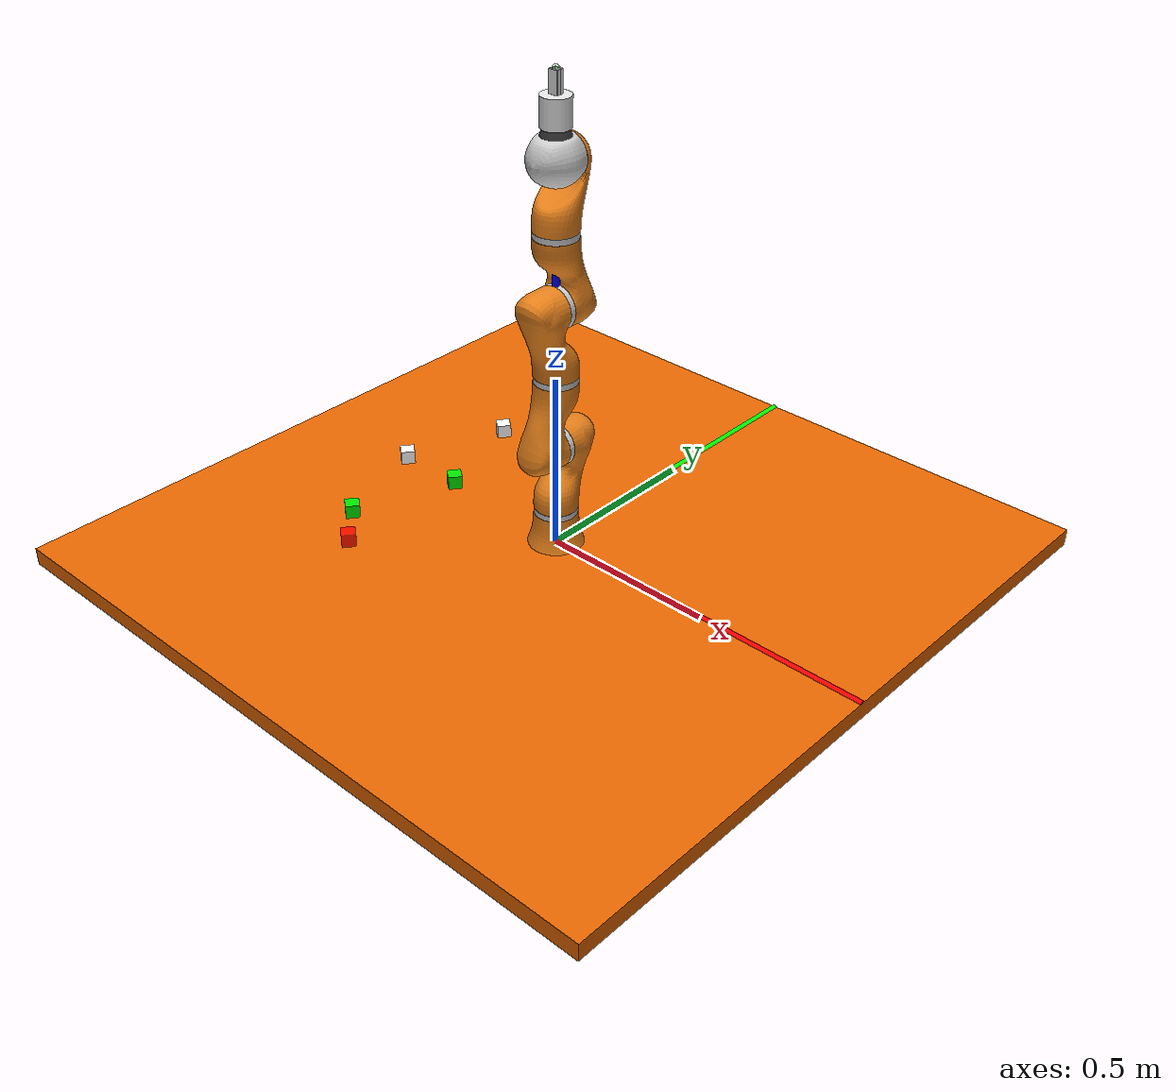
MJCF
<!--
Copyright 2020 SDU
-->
<mujoco model="LWR_Table">
	<compiler meshdir="mesh/" texturedir="texture/" angle="radian" inertiafromgeom="auto" balanceinertia="true"/>
	<option timestep="0.01" integrator="Euler"/>
	<visual>
		<quality shadowsize="4096"/>
		<map fogstart="6" fogend="10"/>
		<headlight diffuse=".6 .6 .6" specular="0 0 0"/>
	</visual>

	<include file="LWR_Dependencies.xml"/>
	<include file="gripper_Dependency.xml"/>

	 <default>
        <default class="block">
            <geom type="box" friction=".5 .1 .1" margin="0.002" condim="1" contype="0" conaffinity="0" size="0.0125 0.0125 0.0125"/>
        </default>
    </default>

	<worldbody>
	<!--	================= Coordinate system ================= /-->
		<light directional="false" cutoff="135" exponent="10" diffuse=".7 .7 .7" pos="0.4 -0.2 5.5" dir="-0.4 0.2 -5.5" specular=".3 .3 .3"/>
		<geom group="2" type="cylinder" contype="0" conaffinity="0" fromto="0 0 0 1 0 0" size="0.01" rgba="1 0 0 1"/>
		<geom group="2" type="cylinder" contype="0" conaffinity="0" fromto="0 0 0 0 1 0" size="0.01" rgba="0 1 0 1"/>
		<geom group="2" type="cylinder" contype="0" conaffinity="0" fromto="0 0 0 0 0 1" size="0.01" rgba="0 0 1 1"/>

		<!--	================= objects ================= /-->
		<body name="blockL01" pos="-0.4 0.0 0.025" quat="1 0 0 0.5">
            <joint type="free"/>
            <geom type="box" mass="0.01" size="0.02 0.02 0.02" rgba="0 .9 0 1" density="100"/>
        </body>

		<body name="blockL02" pos="-0.4 -0.4 0.025" quat="1 0 0 0.5">
            <joint type="free"/>
            <geom type="box" mass="0.01" size="0.02 0.02 0.02" rgba="255 0 0 0.8" density="100"/>
        </body>

		<body name="blockL03" pos="-0.5 0.3 0.025" quat="1 0 0 0.5">
            <joint type="free"/>
            <geom type="box" mass="0.01" size="0.02 0.02 0.02" rgba="30 130 76 1" density="100"/>
        </body>

		<body name="blockL04" pos="-0.5 -0.3 0.025" quat="1 0 0 0.5">
            <joint type="free"/>
            <geom type="box" mass="0.01" size="0.02 0.02 0.02" rgba="0 .9 0 1" density="100"/>
        </body>

		<body name="blockL05" pos="-0.4 0.4 0.025" quat="1 0 0 0.5">
            <joint type="free"/>
            <geom type="box" mass="0.01" size="0.02 0.02 0.02" rgba="255 0 0 0.8" density="100"/>
        </body>

		<body name="blockL06" pos="-0.6 0 0.025" quat="1 0 0 0.5">
            <joint type="free"/>
            <geom type="box" mass="0.01" size="0.02 0.02 0.02" rgba="30 130 76 1" density="100"/>
        </body>

		<!--	================= Table ================= /-->
		<body name="Table/base" pos="0 0 -0.02" quat="1 0 0 0">
			<geom type="box" pos="0 0 0" size="1 1 0.025" rgba="0.9 0.4 0 1" density="3000"/>
		</body>
		<include file="LWR_Load_Chain.xml"/>
	</worldbody>

	<equality>
		<joint joint1="gripper_1" joint2="gripper_2" polycoef="0 -1 0 0 0" active="true"/>
	</equality>
	<include file="LWR_act_pos.xml"/>
	<include file="LWR_act_vel.xml"/>
	<actuator>
		<position name="gripper_motor" joint="gripper_1" gear="3" kp="30"/>
	</actuator>
	<include file="LWR_sensorsNew.xml"/>
	<sensor>
	<jointpos name="gripper_pos" joint="gripper_1" />
	</sensor>
</mujoco>

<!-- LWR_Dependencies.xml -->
<mujocoinclude>
	<default>
		<default class="LWR">
			<geom material="LWR_orange" group="1" contype="0" conaffinity="1" condim="4" margin="0.0001"/>
			<joint limited="true" damping="40" armature="0" range="-3 3"/>
			<site material="LWR_site" type="sphere" size="0.01" group="1"/>
			<general gear="1" biastype="affine" gainprm="800" biasprm="0 -800 -800"/>
		</default>
	</default>
	<asset>
		<material name="LWR_orange" specular=".3" shininess=".6" rgba="0.9 0.5 0.1 1"/>
		<material name="LWR_silver" specular=".3" shininess=".3" rgba="0.8 0.8 0.8 1"/>
		<material name="LWR_site"  rgba=".3 .9 .3 .3"/>

		<mesh file="LWR/LWR_Base1a_b.stl" scale="0.1 0.1 0.1" />
		<mesh file="LWR/LWR_Base1b_b.stl" scale="0.1 0.1 0.1" />
		<mesh file="LWR/LWR_Link1a_b.stl" scale="0.1 0.1 0.1" />
		<mesh file="LWR/LWR_Link1b_b.stl" scale="0.1 0.1 0.1" />
		<mesh file="LWR/LWR_Link2a_b.stl" scale="0.1 0.1 0.1" />
		<mesh file="LWR/LWR_Link2b_b.stl" scale="0.1 0.1 0.1" />
		<mesh file="LWR/LWR_Link3a_b.stl" scale="0.1 0.1 0.1" />
		<mesh file="LWR/LWR_Link3b_b.stl" scale="0.1 0.1 0.1" />
		<mesh file="LWR/LWR_Link4a_b.stl" scale="0.1 0.1 0.1" />
		<mesh file="LWR/LWR_Link4b_b.stl" scale="0.1 0.1 0.1" />
		<mesh file="LWR/LWR_Link5a_b.stl" scale="0.1 0.1 0.1" />
		<mesh file="LWR/LWR_Link6a_b.stl" scale="0.1 0.1 0.1" />
		<mesh file="LWR/LWR_Link7a_b.stl" scale="0.1 0.1 0.1" />
	</asset>

</mujocoinclude>

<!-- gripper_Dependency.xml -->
<mujocoinclude>
	<default>
		<default class="gripper">
			<geom material="Al" contype="1" conaffinity="1" condim="4" margin="0.001"/>
			<joint limited="true" damping="10" armature="5"/>
		</default>
	</default>
	<asset>
		<material name="Al" specular=".8" shininess=".8" rgba="0.9 0.9 0.9 1"/>
	</asset>
</mujocoinclude>

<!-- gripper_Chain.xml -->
<mujocoinclude>
		<!--	================= GRIPPER ================= /-->
		<body pos="0 0 0" childclass="gripper">
			<geom group="1" type="cylinder" fromto="0 0 0 0 0 0.079" size="0.04"/>

			<body pos="0 0 0.08" >
				<joint name="gripper_1" type="slide" pos="0 0 0" axis="1 0 0" limited="true" range="0.001 0.05"/>
				<geom group="1"  type="box" pos="0.005  0.0125 0.03" size="0.0045 0.001 0.03"/>
				<geom group="1"  type="box" pos="0.005 -0.0125 0.03" size="0.0045 0.001 0.03"/>
				<geom group="1"  type="box" pos="0.01  0    0.03" size="0.001 0.0135 0.03"/>
			</body>
			<body pos="0 0 0.08" >
				<joint name="gripper_2" type="slide" pos="0 0 0" axis="1 0 0" limited="true" range="-0.05 0.001"/>
				<geom group="1"  type="box" pos="-0.005  0.0125 0.03" size="0.0045 0.001 0.03"/>
				<geom group="1"  type="box" pos="-0.005 -0.0125 0.03" size="0.0045 0.001 0.03"/>
				<geom group="1"  type="box" pos="-0.01  0    0.03" size="0.001 0.0135 0.03"/>
			</body>
		</body>
</mujocoinclude>

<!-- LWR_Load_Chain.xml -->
<mujocoinclude>
	<body name="LWR_R" pos="0 0 0" quat="1 0 0 0" childclass="LWR">
		<inertial pos="0 0 0.055" quat="0 1 0 0" mass="1.29591" diaginertia="0.00211665 0.00211665 0.00161988" />
		<geom type="mesh" contype="0" mesh="LWR_Base1a_b" />
		<geom type="mesh" pos="0 0 -0.001" material="LWR_silver" contype="0" mesh="LWR_Base1b_b" />

		<body name="LWR/link1" pos="0 0 0.11" quat="0.707107 0 0 -0.707107" >
			<inertial pos="0 0 0.1" quat="0 1 0 0" mass="2.35619" diaginertia="0.0093266 0.0093266 0.00294524" />
			<joint name="LWR/joint1" type="hinge" pos="0 0 0" axis="0 0 1" range="-2.9671 2.9671"/>
			<geom type="mesh" pos="0 0 -0.11" mesh="LWR_Link1a_b" />
			<geom type="mesh" pos="0 0 -0.11" material="LWR_silver" mesh="LWR_Link1b_b" />

			<body name="LWR/link2" pos="0 0 0.2" >
				<inertial pos="0 0 0.1" quat="0 1 0 0" mass="2.94524" diaginertia="0.0171806 0.0171806 0.00368155" />
				<joint name="LWR/joint2" type="hinge" pos="0 0 0" axis="1 0 0" range="-2.0944 2.0944"/>
				<geom type="mesh" pos="0 0 -0.31" mesh="LWR_Link2a_b" />
				<geom type="mesh" pos="0 0 -0.31" material="LWR_silver" mesh="LWR_Link2b_b" />

				<body name="LWR/link3" pos="0 0 0.2" quat="0 0 0 1" >
					<inertial pos="0 0 0.1" quat="0 1 0 0" mass="2.94524" diaginertia="0.0171806 0.0171806 0.00368155" />
					<joint name="LWR/joint3" type="hinge" pos="0 0 0" axis="0 0 1" range="-2.9671 2.9671"/>
					<geom type="mesh" pos="0 0 -0.51" quat="1 0 0 0" mesh="LWR_Link3a_b" />
					<geom type="mesh" pos="0 0 -0.51" quat="1 0 0 0" material="LWR_silver" mesh="LWR_Link3b_b" />

					<body name="LWR/link4" pos="0 0 0.2" >
						<inertial pos="0 0 0.1" quat="0 1 0 0" mass="2.94524" diaginertia="0.0171806 0.0171806 0.00368155" />
						<joint name="LWR/joint4" type="hinge" pos="0 0 0" axis="1 0 0" range="-2.0944 2.0944"/>
						<geom type="mesh" pos="0 0 -0.71" quat="1 0 0 0" mesh="LWR_Link4a_b" />
						<geom type="mesh" pos="0 0 -0.71" quat="1 0 0 0" material="LWR_silver" mesh="LWR_Link4b_b" />

						<body name="LWR/link5" pos="0 0 0.2" quat="0 0 0 1" >
							<inertial pos="0 0 0.095" quat="0 1 0 0" mass="2.82743" diaginertia="0.0153388 0.0153388 0.00353429" />
							<joint name="LWR/joint5" type="hinge" pos="0 0 0" axis="0 0 1" range="-2.9671    2.9671"/>
							<geom type="mesh" pos="0 0 -0.91" quat="1 0 0 0" mesh="LWR_Link5a_b" />

							<body name="LWR/link6" pos="0 0 0.19" >
								<inertial pos="0 0 0.019" quat="0 1 0 0" mass="1.03673" diaginertia="0.00131699 0.00131699 0.00129591" />
								<joint name="LWR/joint6" type="hinge" pos="0 0 0" axis="1 0 0" range="-2.0944 2.0944"/>
								<geom type="mesh" pos="0 0 -1.1" quat="1 0 0 0" material="LWR_silver" mesh="LWR_Link6a_b" />

								<body name="LWR/link7" pos="0 0 0.078" >
									<inertial pos="0 0 -0.02" quat="0 1 0 0" mass="0.603186" diaginertia="0.000562973 0.000562973 0.000482549" />
									<joint name="LWR/joint7" type="hinge" pos="0 0 0" axis="0 0 1" range="-2.9671 2.9671"/>
									<geom type="mesh" pos="0 0 -1.178" quat="1 0 0 0" rgba = "0.2 0.2 0.2 1" mesh="LWR_Link7a_b" />
									<site name="LWR/EE" pos="0 0 0.14" />
									<include file="gripper_Chain.xml"/>
								</body>
							</body>
						</body>
					</body>
				</body>
			</body>
		</body>
	</body>

</mujocoinclude>

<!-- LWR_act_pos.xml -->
<mujocoinclude>
	<actuator>
		<position class="LWR" ctrllimited="true" ctrlrange="-3.14159 3.14159" name="LWR/pos_joint1" joint="LWR/joint1" kp="3000" />
		<position class="LWR" ctrllimited="true" ctrlrange="-3.14159 3.14159" name="LWR/pos_joint2" joint="LWR/joint2" kp="3000" />
		<position class="LWR" ctrllimited="true" ctrlrange="-3.14159 3.14159" name="LWR/pos_joint3" joint="LWR/joint3" kp="3000" />
		<position class="LWR" ctrllimited="true" ctrlrange="-3.14159 3.14159" name="LWR/pos_joint4" joint="LWR/joint4" kp="3000" />
		<position class="LWR" ctrllimited="true" ctrlrange="-3.14159 3.14159" name="LWR/pos_joint5" joint="LWR/joint5" kp="3000" />
		<position class="LWR" ctrllimited="true" ctrlrange="-3.14159 3.14159" name="LWR/pos_joint6" joint="LWR/joint6" kp="3000" />
		<position class="LWR" ctrllimited="true" ctrlrange="-3.14159 3.14159" name="LWR/pos_joint7" joint="LWR/joint7" kp="3000" />

	</actuator>
</mujocoinclude>

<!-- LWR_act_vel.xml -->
<mujocoinclude>
	<actuator>
		<velocity class="LWR" name="LWR/vel_joint1" joint="LWR/joint1" kv="10" />
		<velocity class="LWR" name="LWR/vel_joint2" joint="LWR/joint2" kv="10" />
		<velocity class="LWR" name="LWR/vel_joint3" joint="LWR/joint3" kv="10" />
		<velocity class="LWR" name="LWR/vel_joint4" joint="LWR/joint4" kv="10" />
		<velocity class="LWR" name="LWR/vel_joint5" joint="LWR/joint5" kv="10" />
		<velocity class="LWR" name="LWR/vel_joint6" joint="LWR/joint6" kv="10" />
		<velocity class="LWR" name="LWR/vel_joint7" joint="LWR/joint7" kv="10" />
	</actuator>
</mujocoinclude>

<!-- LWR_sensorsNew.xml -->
<mujocoinclude>
	<sensor>
		<jointpos name="LWR/sen_pos_joint1" joint="LWR/joint1" />
		<jointpos name="LWR/sen_pos_joint2" joint="LWR/joint2" />
		<jointpos name="LWR/sen_pos_joint3" joint="LWR/joint3" />
		<jointpos name="LWR/sen_pos_joint4" joint="LWR/joint4" />
		<jointpos name="LWR/sen_pos_joint5" joint="LWR/joint5" />
		<jointpos name="LWR/sen_pos_joint6" joint="LWR/joint6" />
		<jointpos name="LWR/sen_pos_joint7" joint="LWR/joint7" />

		<jointvel name="LWR/sen_vel_joint1" joint="LWR/joint1" />
		<jointvel name="LWR/sen_vel_joint2" joint="LWR/joint2" />
		<jointvel name="LWR/sen_vel_joint3" joint="LWR/joint3" />
		<jointvel name="LWR/sen_vel_joint4" joint="LWR/joint4" />
		<jointvel name="LWR/sen_vel_joint5" joint="LWR/joint5" />
		<jointvel name="LWR/sen_vel_joint6" joint="LWR/joint6" />
		<jointvel name="LWR/sen_vel_joint7" joint="LWR/joint7" />

		<framepos name="LWR/EE_pos" objtype="site" objname="LWR/EE" />
		<framequat name="LWR/EE_quat" objtype="site" objname="LWR/EE" />

		<force name="LWR/TcpF" site="LWR/EE" />
		<torque name="LWR/TcpT" site="LWR/EE"/>
	</sensor>
</mujocoinclude>
